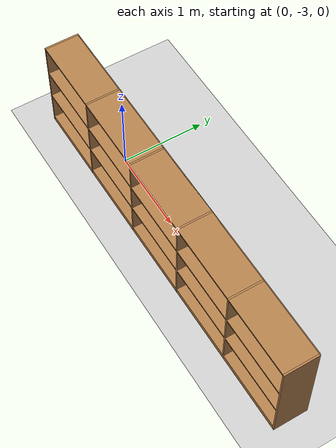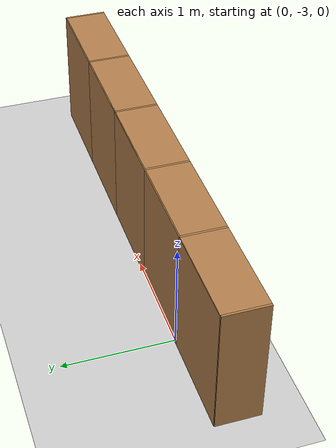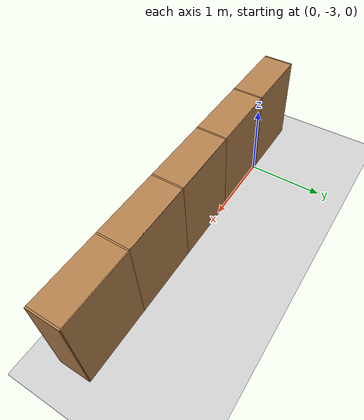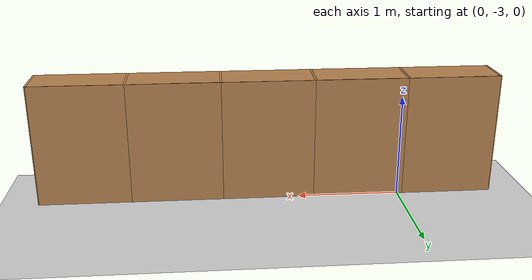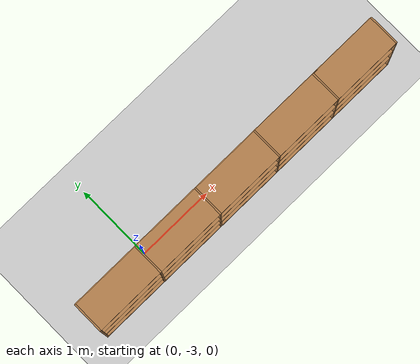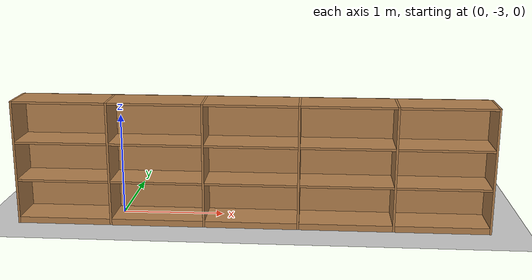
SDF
<sdf version="1.6">
 <world name="default">
  <light name="sun" type="directional">
   <pose>0 0 10 0 -0 0</pose>
   <diffuse>0.8 0.8 0.8 1</diffuse>
   <specular>0.1 0.1 0.1 1</specular>
   <attenuation>
    <range>1000</range>
    <constant>0.9</constant>
    <linear>0.01</linear>
    <quadratic>0.001</quadratic>
   </attenuation>
   <direction>-0.5 0.5 -1</direction>
  </light>
  <model name="ground_plane">
   <static>1</static>
   <link name="link">
    <collision name="collision">
     <geometry><plane><normal>0 0 1</normal><size>100 100</size></plane></geometry>
     <surface><friction><ode><mu>100</mu><mu2>50</mu2></ode></friction></surface>
    </collision>
    <visual name="visual">
     <cast_shadows>0</cast_shadows>
     <geometry><plane><normal>0 0 1</normal><size>100 100</size></plane></geometry>
     <material>
      <script><uri>file://media/materials/scripts/gazebo.material</uri><name>Gazebo/Grey</name></script>
     </material>
    </visual>
   </link>
  </model>
  <physics name="default_physics" default="0" type="ode">
   <max_step_size>0.01</max_step_size>
   <real_time_factor>1</real_time_factor>
   <real_time_update_rate>100</real_time_update_rate>
  </physics>
  <gravity>0 0 -9.8</gravity>
  <magnetic_field>6e-06 2.3e-05 -4.2e-05</magnetic_field>
  <atmosphere type="adiabatic"/>
  <scene><ambient>0.4 0.4 0.4 1</ambient><background>0.7 0.7 0.7 1</background><shadows>1</shadows></scene>
  <spherical_coordinates>
   <surface_model>EARTH_WGS84</surface_model>
   <latitude_deg>0</latitude_deg>
   <longitude_deg>0</longitude_deg>
   <elevation>0</elevation>
   <heading_deg>0</heading_deg>
  </spherical_coordinates>
  <model name="bookshelf">
   <static>1</static>
   <link name="link">
    <inertial><mass>1</mass></inertial>
    <collision name="back">
     <pose>0 0.005 0.6 0 -0 0</pose>
     <geometry><box><size>0.9 0.01 1.2</size></box></geometry>
    </collision>
    <visual name="visual1">
     <pose>0 0.005 0.6 0 -0 0</pose>
     <geometry><box><size>0.9 0.01 1.2</size></box></geometry>
     <material>
      <script><uri>file://media/materials/scripts/gazebo.material</uri><name>Gazebo/Wood</name></script>
     </material>
    </visual>
    <collision name="left_side">
     <pose>0.45 -0.195 0.6 0 -0 0</pose>
     <geometry><box><size>0.02 0.4 1.2</size></box></geometry>
    </collision>
    <visual name="visual2">
     <pose>0.45 -0.195 0.6 0 -0 0</pose>
     <geometry><box><size>0.02 0.4 1.2</size></box></geometry>
     <material>
      <script><uri>file://media/materials/scripts/gazebo.material</uri><name>Gazebo/Wood</name></script>
     </material>
    </visual>
    <collision name="right_side">
     <pose>-0.45 -0.195 0.6 0 -0 0</pose>
     <geometry><box><size>0.02 0.4 1.2</size></box></geometry>
    </collision>
    <visual name="visual3">
     <pose>-0.45 -0.195 0.6 0 -0 0</pose>
     <geometry><box><size>0.02 0.4 1.2</size></box></geometry>
     <material>
      <script><uri>file://media/materials/scripts/gazebo.material</uri><name>Gazebo/Wood</name></script>
     </material>
    </visual>
    <collision name="bottom">
     <pose>0 -0.195 0.03 0 -0 0</pose>
     <geometry><box><size>0.88 0.4 0.06</size></box></geometry>
    </collision>
    <visual name="visual4">
     <pose>0 -0.195 0.03 0 -0 0</pose>
     <geometry><box><size>0.88 0.4 0.06</size></box></geometry>
     <material>
      <script><uri>file://media/materials/scripts/gazebo.material</uri><name>Gazebo/Wood</name></script>
     </material>
    </visual>
    <collision name="top">
     <pose>0 -0.195 1.19 0 -0 0</pose>
     <geometry><box><size>0.88 0.4 0.02</size></box></geometry>
    </collision>
    <visual name="visual5">
     <pose>0 -0.195 1.19 0 -0 0</pose>
     <geometry><box><size>0.88 0.4 0.02</size></box></geometry>
     <material>
      <script><uri>file://media/materials/scripts/gazebo.material</uri><name>Gazebo/Wood</name></script>
     </material>
    </visual>
    <collision name="low_shelf">
     <pose>0 -0.195 0.43 0 -0 0</pose>
     <geometry><box><size>0.88 0.4 0.02</size></box></geometry>
    </collision>
    <visual name="visual6">
     <pose>0 -0.195 0.43 0 -0 0</pose>
     <geometry><box><size>0.88 0.4 0.02</size></box></geometry>
     <material>
      <script><uri>file://media/materials/scripts/gazebo.material</uri><name>Gazebo/Wood</name></script>
     </material>
    </visual>
    <collision name="high_shelf">
     <pose>0 -0.195 0.8 0 -0 0</pose>
     <geometry><box><size>0.88 0.4 0.02</size></box></geometry>
    </collision>
    <visual name="visual7">
     <pose>0 -0.195 0.8 0 -0 0</pose>
     <geometry><box><size>0.88 0.4 0.02</size></box></geometry>
     <material>
      <script><uri>file://media/materials/scripts/gazebo.material</uri><name>Gazebo/Wood</name></script>
     </material>
    </visual>
   </link>
   <pose>-0.5 -3 0 0 -0 0</pose>
  </model>
  <model name="bookshelf_0">
   <static>1</static>
   <link name="link">
    <inertial><mass>1</mass></inertial>
    <collision name="back">
     <pose>0 0.005 0.6 0 -0 0</pose>
     <geometry><box><size>0.9 0.01 1.2</size></box></geometry>
    </collision>
    <visual name="visual1">
     <pose>0 0.005 0.6 0 -0 0</pose>
     <geometry><box><size>0.9 0.01 1.2</size></box></geometry>
     <material>
      <script><uri>file://media/materials/scripts/gazebo.material</uri><name>Gazebo/Wood</name></script>
     </material>
    </visual>
    <collision name="left_side">
     <pose>0.45 -0.195 0.6 0 -0 0</pose>
     <geometry><box><size>0.02 0.4 1.2</size></box></geometry>
    </collision>
    <visual name="visual2">
     <pose>0.45 -0.195 0.6 0 -0 0</pose>
     <geometry><box><size>0.02 0.4 1.2</size></box></geometry>
     <material>
      <script><uri>file://media/materials/scripts/gazebo.material</uri><name>Gazebo/Wood</name></script>
     </material>
    </visual>
    <collision name="right_side">
     <pose>-0.45 -0.195 0.6 0 -0 0</pose>
     <geometry><box><size>0.02 0.4 1.2</size></box></geometry>
    </collision>
    <visual name="visual3">
     <pose>-0.45 -0.195 0.6 0 -0 0</pose>
     <geometry><box><size>0.02 0.4 1.2</size></box></geometry>
     <material>
      <script><uri>file://media/materials/scripts/gazebo.material</uri><name>Gazebo/Wood</name></script>
     </material>
    </visual>
    <collision name="bottom">
     <pose>0 -0.195 0.03 0 -0 0</pose>
     <geometry><box><size>0.88 0.4 0.06</size></box></geometry>
    </collision>
    <visual name="visual4">
     <pose>0 -0.195 0.03 0 -0 0</pose>
     <geometry><box><size>0.88 0.4 0.06</size></box></geometry>
     <material>
      <script><uri>file://media/materials/scripts/gazebo.material</uri><name>Gazebo/Wood</name></script>
     </material>
    </visual>
    <collision name="top">
     <pose>0 -0.195 1.19 0 -0 0</pose>
     <geometry><box><size>0.88 0.4 0.02</size></box></geometry>
    </collision>
    <visual name="visual5">
     <pose>0 -0.195 1.19 0 -0 0</pose>
     <geometry><box><size>0.88 0.4 0.02</size></box></geometry>
     <material>
      <script><uri>file://media/materials/scripts/gazebo.material</uri><name>Gazebo/Wood</name></script>
     </material>
    </visual>
    <collision name="low_shelf">
     <pose>0 -0.195 0.43 0 -0 0</pose>
     <geometry><box><size>0.88 0.4 0.02</size></box></geometry>
    </collision>
    <visual name="visual6">
     <pose>0 -0.195 0.43 0 -0 0</pose>
     <geometry><box><size>0.88 0.4 0.02</size></box></geometry>
     <material>
      <script><uri>file://media/materials/scripts/gazebo.material</uri><name>Gazebo/Wood</name></script>
     </material>
    </visual>
    <collision name="high_shelf">
     <pose>0 -0.195 0.8 0 -0 0</pose>
     <geometry><box><size>0.88 0.4 0.02</size></box></geometry>
    </collision>
    <visual name="visual7">
     <pose>0 -0.195 0.8 0 -0 0</pose>
     <geometry><box><size>0.88 0.4 0.02</size></box></geometry>
     <material>
      <script><uri>file://media/materials/scripts/gazebo.material</uri><name>Gazebo/Wood</name></script>
     </material>
    </visual>
   </link>
   <pose>0.4 -3 0 0 -0 0</pose>
  </model>
  <model name="bookshelf_1">
   <static>1</static>
   <link name="link">
    <inertial><mass>1</mass></inertial>
    <collision name="back">
     <pose>0 0.005 0.6 0 -0 0</pose>
     <geometry><box><size>0.9 0.01 1.2</size></box></geometry>
    </collision>
    <visual name="visual1">
     <pose>0 0.005 0.6 0 -0 0</pose>
     <geometry><box><size>0.9 0.01 1.2</size></box></geometry>
     <material>
      <script><uri>file://media/materials/scripts/gazebo.material</uri><name>Gazebo/Wood</name></script>
     </material>
    </visual>
    <collision name="left_side">
     <pose>0.45 -0.195 0.6 0 -0 0</pose>
     <geometry><box><size>0.02 0.4 1.2</size></box></geometry>
    </collision>
    <visual name="visual2">
     <pose>0.45 -0.195 0.6 0 -0 0</pose>
     <geometry><box><size>0.02 0.4 1.2</size></box></geometry>
     <material>
      <script><uri>file://media/materials/scripts/gazebo.material</uri><name>Gazebo/Wood</name></script>
     </material>
    </visual>
    <collision name="right_side">
     <pose>-0.45 -0.195 0.6 0 -0 0</pose>
     <geometry><box><size>0.02 0.4 1.2</size></box></geometry>
    </collision>
    <visual name="visual3">
     <pose>-0.45 -0.195 0.6 0 -0 0</pose>
     <geometry><box><size>0.02 0.4 1.2</size></box></geometry>
     <material>
      <script><uri>file://media/materials/scripts/gazebo.material</uri><name>Gazebo/Wood</name></script>
     </material>
    </visual>
    <collision name="bottom">
     <pose>0 -0.195 0.03 0 -0 0</pose>
     <geometry><box><size>0.88 0.4 0.06</size></box></geometry>
    </collision>
    <visual name="visual4">
     <pose>0 -0.195 0.03 0 -0 0</pose>
     <geometry><box><size>0.88 0.4 0.06</size></box></geometry>
     <material>
      <script><uri>file://media/materials/scripts/gazebo.material</uri><name>Gazebo/Wood</name></script>
     </material>
    </visual>
    <collision name="top">
     <pose>0 -0.195 1.19 0 -0 0</pose>
     <geometry><box><size>0.88 0.4 0.02</size></box></geometry>
    </collision>
    <visual name="visual5">
     <pose>0 -0.195 1.19 0 -0 0</pose>
     <geometry><box><size>0.88 0.4 0.02</size></box></geometry>
     <material>
      <script><uri>file://media/materials/scripts/gazebo.material</uri><name>Gazebo/Wood</name></script>
     </material>
    </visual>
    <collision name="low_shelf">
     <pose>0 -0.195 0.43 0 -0 0</pose>
     <geometry><box><size>0.88 0.4 0.02</size></box></geometry>
    </collision>
    <visual name="visual6">
     <pose>0 -0.195 0.43 0 -0 0</pose>
     <geometry><box><size>0.88 0.4 0.02</size></box></geometry>
     <material>
      <script><uri>file://media/materials/scripts/gazebo.material</uri><name>Gazebo/Wood</name></script>
     </material>
    </visual>
    <collision name="high_shelf">
     <pose>0 -0.195 0.8 0 -0 0</pose>
     <geometry><box><size>0.88 0.4 0.02</size></box></geometry>
    </collision>
    <visual name="visual7">
     <pose>0 -0.195 0.8 0 -0 0</pose>
     <geometry><box><size>0.88 0.4 0.02</size></box></geometry>
     <material>
      <script><uri>file://media/materials/scripts/gazebo.material</uri><name>Gazebo/Wood</name></script>
     </material>
    </visual>
   </link>
   <pose>1.3 -3 0 0 -0 0</pose>
  </model>
  <model name="bookshelf_3">
   <static>1</static>
   <link name="link">
    <inertial><mass>1</mass></inertial>
    <collision name="back">
     <pose>0 0.005 0.6 0 -0 0</pose>
     <geometry><box><size>0.9 0.01 1.2</size></box></geometry>
    </collision>
    <visual name="visual1">
     <pose>0 0.005 0.6 0 -0 0</pose>
     <geometry><box><size>0.9 0.01 1.2</size></box></geometry>
     <material>
      <script><uri>file://media/materials/scripts/gazebo.material</uri><name>Gazebo/Wood</name></script>
     </material>
    </visual>
    <collision name="left_side">
     <pose>0.45 -0.195 0.6 0 -0 0</pose>
     <geometry><box><size>0.02 0.4 1.2</size></box></geometry>
    </collision>
    <visual name="visual2">
     <pose>0.45 -0.195 0.6 0 -0 0</pose>
     <geometry><box><size>0.02 0.4 1.2</size></box></geometry>
     <material>
      <script><uri>file://media/materials/scripts/gazebo.material</uri><name>Gazebo/Wood</name></script>
     </material>
    </visual>
    <collision name="right_side">
     <pose>-0.45 -0.195 0.6 0 -0 0</pose>
     <geometry><box><size>0.02 0.4 1.2</size></box></geometry>
    </collision>
    <visual name="visual3">
     <pose>-0.45 -0.195 0.6 0 -0 0</pose>
     <geometry><box><size>0.02 0.4 1.2</size></box></geometry>
     <material>
      <script><uri>file://media/materials/scripts/gazebo.material</uri><name>Gazebo/Wood</name></script>
     </material>
    </visual>
    <collision name="bottom">
     <pose>0 -0.195 0.03 0 -0 0</pose>
     <geometry><box><size>0.88 0.4 0.06</size></box></geometry>
    </collision>
    <visual name="visual4">
     <pose>0 -0.195 0.03 0 -0 0</pose>
     <geometry><box><size>0.88 0.4 0.06</size></box></geometry>
     <material>
      <script><uri>file://media/materials/scripts/gazebo.material</uri><name>Gazebo/Wood</name></script>
     </material>
    </visual>
    <collision name="top">
     <pose>0 -0.195 1.19 0 -0 0</pose>
     <geometry><box><size>0.88 0.4 0.02</size></box></geometry>
    </collision>
    <visual name="visual5">
     <pose>0 -0.195 1.19 0 -0 0</pose>
     <geometry><box><size>0.88 0.4 0.02</size></box></geometry>
     <material>
      <script><uri>file://media/materials/scripts/gazebo.material</uri><name>Gazebo/Wood</name></script>
     </material>
    </visual>
    <collision name="low_shelf">
     <pose>0 -0.195 0.43 0 -0 0</pose>
     <geometry><box><size>0.88 0.4 0.02</size></box></geometry>
    </collision>
    <visual name="visual6">
     <pose>0 -0.195 0.43 0 -0 0</pose>
     <geometry><box><size>0.88 0.4 0.02</size></box></geometry>
     <material>
      <script><uri>file://media/materials/scripts/gazebo.material</uri><name>Gazebo/Wood</name></script>
     </material>
    </visual>
    <collision name="high_shelf">
     <pose>0 -0.195 0.8 0 -0 0</pose>
     <geometry><box><size>0.88 0.4 0.02</size></box></geometry>
    </collision>
    <visual name="visual7">
     <pose>0 -0.195 0.8 0 -0 0</pose>
     <geometry><box><size>0.88 0.4 0.02</size></box></geometry>
     <material>
      <script><uri>file://media/materials/scripts/gazebo.material</uri><name>Gazebo/Wood</name></script>
     </material>
    </visual>
   </link>
   <pose>2.2 -3 0 0 -0 0</pose>
  </model>
  <model name="bookshelf_4">
   <static>1</static>
   <link name="link">
    <inertial><mass>1</mass></inertial>
    <collision name="back">
     <pose>0 0.005 0.6 0 -0 0</pose>
     <geometry><box><size>0.9 0.01 1.2</size></box></geometry>
    </collision>
    <visual name="visual1">
     <pose>0 0.005 0.6 0 -0 0</pose>
     <geometry><box><size>0.9 0.01 1.2</size></box></geometry>
     <material>
      <script><uri>file://media/materials/scripts/gazebo.material</uri><name>Gazebo/Wood</name></script>
     </material>
    </visual>
    <collision name="left_side">
     <pose>0.45 -0.195 0.6 0 -0 0</pose>
     <geometry><box><size>0.02 0.4 1.2</size></box></geometry>
    </collision>
    <visual name="visual2">
     <pose>0.45 -0.195 0.6 0 -0 0</pose>
     <geometry><box><size>0.02 0.4 1.2</size></box></geometry>
     <material>
      <script><uri>file://media/materials/scripts/gazebo.material</uri><name>Gazebo/Wood</name></script>
     </material>
    </visual>
    <collision name="right_side">
     <pose>-0.45 -0.195 0.6 0 -0 0</pose>
     <geometry><box><size>0.02 0.4 1.2</size></box></geometry>
    </collision>
    <visual name="visual3">
     <pose>-0.45 -0.195 0.6 0 -0 0</pose>
     <geometry><box><size>0.02 0.4 1.2</size></box></geometry>
     <material>
      <script><uri>file://media/materials/scripts/gazebo.material</uri><name>Gazebo/Wood</name></script>
     </material>
    </visual>
    <collision name="bottom">
     <pose>0 -0.195 0.03 0 -0 0</pose>
     <geometry><box><size>0.88 0.4 0.06</size></box></geometry>
    </collision>
    <visual name="visual4">
     <pose>0 -0.195 0.03 0 -0 0</pose>
     <geometry><box><size>0.88 0.4 0.06</size></box></geometry>
     <material>
      <script><uri>file://media/materials/scripts/gazebo.material</uri><name>Gazebo/Wood</name></script>
     </material>
    </visual>
    <collision name="top">
     <pose>0 -0.195 1.19 0 -0 0</pose>
     <geometry><box><size>0.88 0.4 0.02</size></box></geometry>
    </collision>
    <visual name="visual5">
     <pose>0 -0.195 1.19 0 -0 0</pose>
     <geometry><box><size>0.88 0.4 0.02</size></box></geometry>
     <material>
      <script><uri>file://media/materials/scripts/gazebo.material</uri><name>Gazebo/Wood</name></script>
     </material>
    </visual>
    <collision name="low_shelf">
     <pose>0 -0.195 0.43 0 -0 0</pose>
     <geometry><box><size>0.88 0.4 0.02</size></box></geometry>
    </collision>
    <visual name="visual6">
     <pose>0 -0.195 0.43 0 -0 0</pose>
     <geometry><box><size>0.88 0.4 0.02</size></box></geometry>
     <material>
      <script><uri>file://media/materials/scripts/gazebo.material</uri><name>Gazebo/Wood</name></script>
     </material>
    </visual>
    <collision name="high_shelf">
     <pose>0 -0.195 0.8 0 -0 0</pose>
     <geometry><box><size>0.88 0.4 0.02</size></box></geometry>
    </collision>
    <visual name="visual7">
     <pose>0 -0.195 0.8 0 -0 0</pose>
     <geometry><box><size>0.88 0.4 0.02</size></box></geometry>
     <material>
      <script><uri>file://media/materials/scripts/gazebo.material</uri><name>Gazebo/Wood</name></script>
     </material>
    </visual>
   </link>
   <pose>3.1 -3 0 0 -0 0</pose>
  </model>
 </world>
</sdf>
